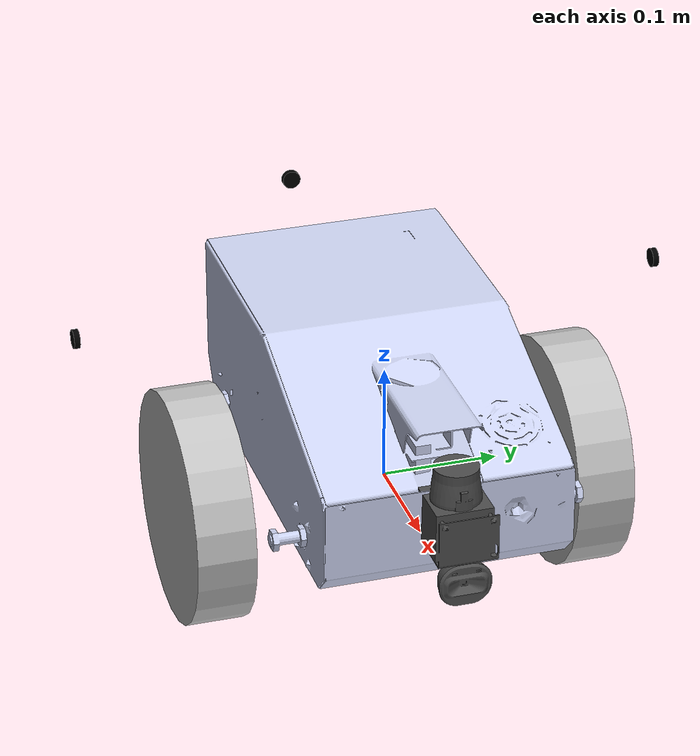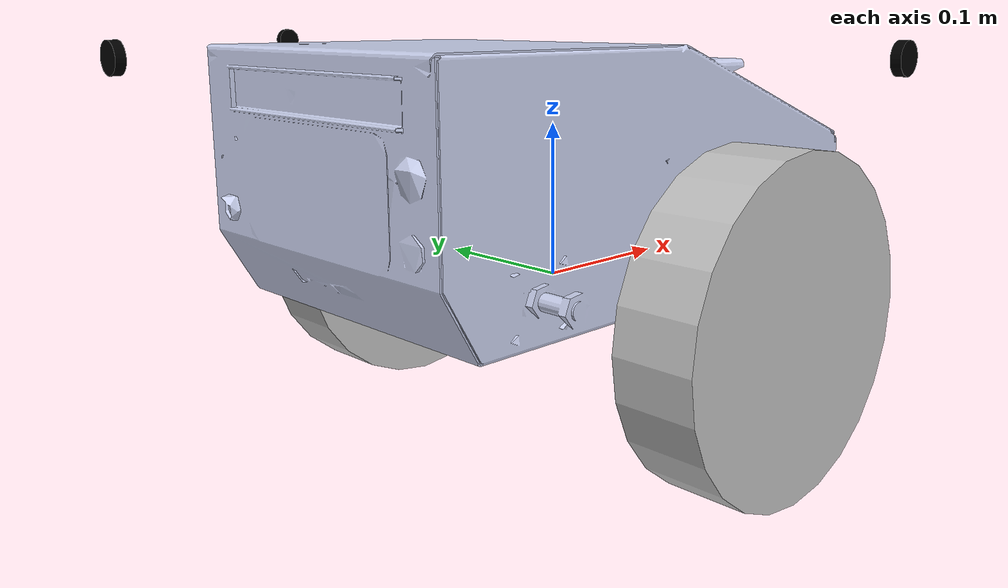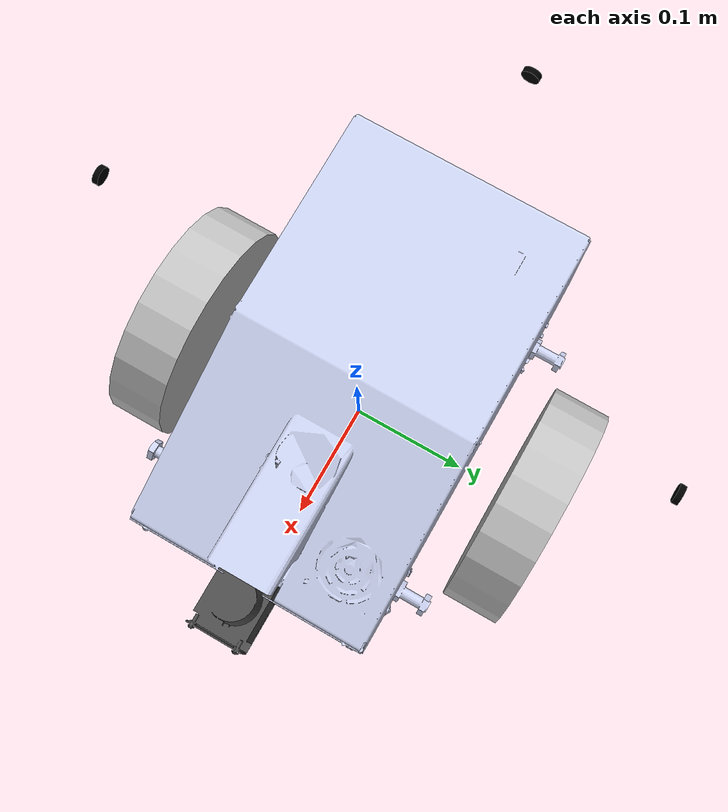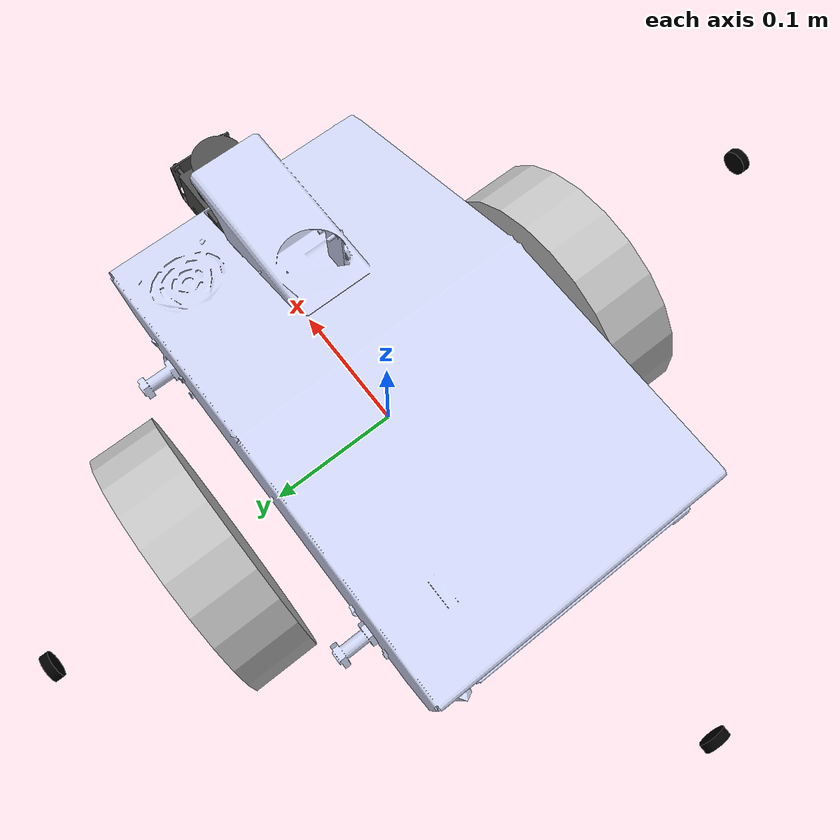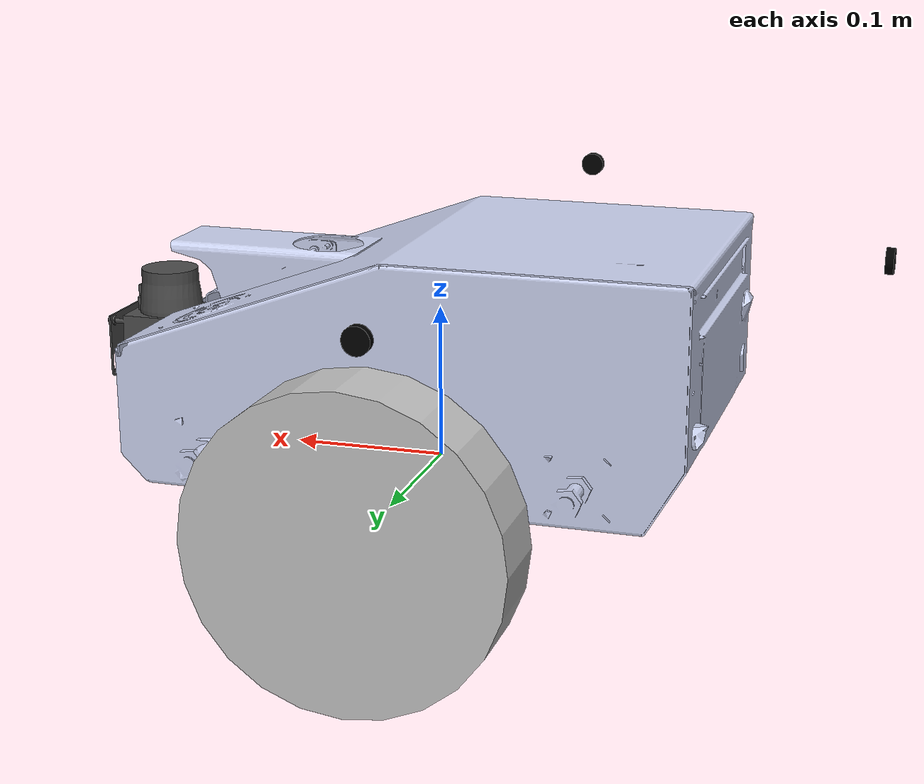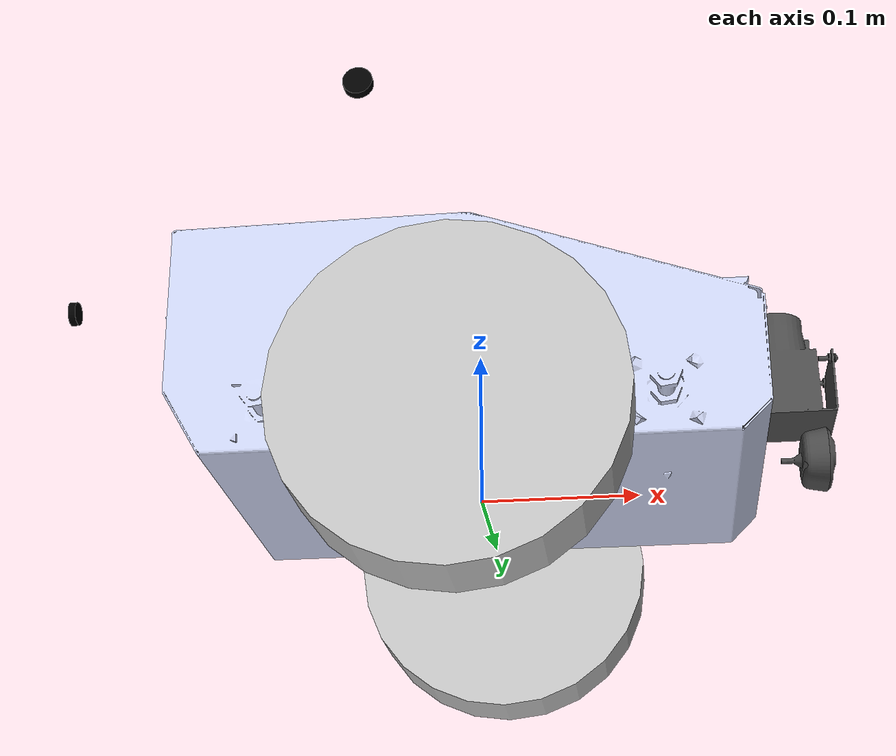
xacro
<?xml version="1.0"?>
<robot
  name="armadillo_base_urdf" description="Armadillo robot base">

  <link
    name="base_link">
    <inertial>
      <origin
        xyz="-0.058417 0.00010778 0.15422"
        rpy="0 0 0" />
      <mass
        value="100.6548" />
      <inertia
        ixx="0.61639"
        ixy="-9.1727E-05"
        ixz="-0.093044"
        iyy="0.57997"
        iyz="5.3231E-05"
        izz="0.36693" />
    </inertial>
   <visual name='chassis'>
      <origin
        xyz="0 0 0"
        rpy="0 0 0" />
      <geometry>
        <mesh
          filename="package://robotican_armadillo/description/meshes/base_link.STL" />
      </geometry>
      <material
        name="">
        <color
          rgba="0.79216 0.81961 0.93333 1" />
      </material>
    </visual>
      <collision name='caster_collision'>
      <origin
        xyz="-0.35 0 0"
        rpy="0 0 0" />
            <geometry>
              <sphere radius="0.1"/>
            </geometry>
            <surface>
              <friction>
                <ode>
                  <mu>0</mu>
                  <mu2>0</mu2>
                  <slip1>1.0</slip1>
                  <slip2>1.0</slip2>
                </ode>
              </friction>
            </surface>
          </collision>
  </link>

  <link name="base_footprint"/>

 <joint name="base_link_to_base_footprint" type="fixed">
    <parent link="base_link"/>
    <child link="base_footprint"/>
    <origin xyz="0.00 0.00 -0.1" rpy="0.0 0.0 0.0"/>
  </joint>

  <link
    name="front_cam_link">
    <inertial>
      <origin
        xyz="-0.0060072 3.3793E-07 0.0005545"
        rpy="0 0 0" />
      <mass
        value="0.01942" />
      <inertia
        ixx="3.9185E-06"
        ixy="-2.0999E-11"
        ixz="-4.949E-08"
        iyy="2.1089E-06"
        iyz="-3.146E-10"
        izz="2.8316E-06" />
    </inertial>
    <visual>
      <origin
        xyz="0 0 0"
        rpy="0 0 0" />
      <geometry>
        <mesh
          filename="package://robotican_armadillo/description/meshes/front_cam_link.STL" />
      </geometry>
      <material
        name="">
        <color
          rgba="0.29804 0.29804 0.29804 1" />
      </material>
    </visual>
    <collision>
      <origin
        xyz="0 0 0"
        rpy="0 0 0" />
      <geometry>
        <mesh
          filename="package://robotican_armadillo/description/meshes/front_cam_link.STL" />
      </geometry>
    </collision>
  </link>
  <joint
    name="front_cam_joint"
    type="fixed">
    <origin
      xyz="0.21658 0 0.0187"
      rpy="0 0 0" />
    <parent
      link="base_link" />
    <child
      link="front_cam_link" />
    <axis
      xyz="0 0 0" />
  </joint>
  <link
    name="left_urf_link">
    <inertial>
      <origin
        xyz="-0.0094226 -0.00019318 -1.6889E-05"
        rpy="0 0 0" />
      <mass
        value="0.0027749" />
      <inertia
        ixx="1.2831E-07"
        ixy="3.1103E-09"
        ixz="1.5459E-10"
        iyy="1.2843E-07"
        iyz="-4.3527E-09"
        izz="1.1894E-07" />
    </inertial>
    <visual>
      <origin
        xyz="0 0 0"
        rpy="0 ${M_PI/2} 0" />
      <geometry>
	<cylinder  length="0.005" radius="0.008"/>
      </geometry>
      <material
        name="">
        <color
          rgba="0 0 0 1" />
      </material>
    </visual>
    <collision>
      <origin
        xyz="0 0 0"
        rpy="0 ${M_PI/2} 0" />
      <geometry>
	<cylinder  length="0.01" radius="0.008"/>
      </geometry>
    </collision>
  </link>
  <joint
    name="left_urf_joint"
    type="fixed">
    <origin
      xyz="-0.038417 0.25288 0.1498"
      rpy="0 0 1.5708" />
    <parent
      link="base_link" />
    <child
      link="left_urf_link" />
    <axis
      xyz="0 0 0" />
  </joint>
  <link
    name="right_urf_link">
    <inertial>
      <origin
        xyz="-0.0094226 1.6889E-05 -0.00019318"
        rpy="0 0 0" />
      <mass
        value="0.0027749" />
      <inertia
        ixx="1.2831E-07"
        ixy="-1.5459E-10"
        ixz="3.1103E-09"
        iyy="1.1894E-07"
        iyz="4.3527E-09"
        izz="1.2843E-07" />
    </inertial>
    <visual>
      <origin
        xyz="0 0 0"
        rpy="0 ${M_PI/2} 0" />
      <geometry>
	<cylinder  length="0.005" radius="0.008"/>
      </geometry>
      <material
        name="">
        <color
          rgba="0 0 0 1" />
      </material>
    </visual>
    <collision>
      <origin
        xyz="0 0 0"
         rpy="0 ${M_PI/2} 0" />
      <geometry>
	<cylinder  length="0.005" radius="0.008"/>
      </geometry>
    </collision>
  </link>
  <joint
    name="right_urf_joint"
    type="fixed">
    <origin
      xyz="-0.038417 -0.25288 0.1498"
      rpy="0 0 -1.5708" />
    <parent
      link="base_link" />
    <child
      link="right_urf_link" />
    <axis
      xyz="0 0 0" />
  </joint>
  <link
    name="rear_urf_link">
    <inertial>
      <origin
        xyz="-0.0094226 -1.6889E-05 0.00019318"
        rpy="0 0 0" />
      <mass
        value="0.0027749" />
      <inertia
        ixx="1.2831E-07"
        ixy="1.5459E-10"
        ixz="-3.1103E-09"
        iyy="1.1894E-07"
        iyz="4.3527E-09"
        izz="1.2843E-07" />
    </inertial>
    <visual>
      <origin
        xyz="0 0 0"
        rpy="0 ${M_PI/2} 0" />
      <geometry>
	<cylinder  length="0.005" radius="0.008"/>
      </geometry>
      <material
        name="">
        <color
          rgba="0 0 0 1" />
      </material>
    </visual>
    <collision>
      <origin
        xyz="0 0 0"
        rpy="0 ${M_PI/2} 0" />
      <geometry>
	<cylinder  length="0.01" radius="0.008"/>
      </geometry>
    </collision>
  </link>
  <joint
    name="rear_urf_joint"
    type="fixed">
    <origin
      xyz="-0.28028 0 0.1498"
      rpy="0 0 3.1416" />
    <parent
      link="base_link" />
    <child
      link="rear_urf_link" />
    <axis
      xyz="0 0 0" />
  </joint>
  <link
    name="left_wheel_link">
    <inertial>
      <origin
        xyz="5.6549E-06 -0.050799 0.030167"
        rpy="0 0 0" />
      <mass
        value="1.8524" />
      <inertia
        ixx="0.0069046"
        ixy="-3.8717E-08"
        ixz="2.0707E-07"
        iyy="0.013153"
        iyz="-1.0124E-07"
        izz="0.0069054" />
    </inertial>
    <visual>
      <origin
        xyz="0 0 0"
         rpy="1.57079632679 0 0" />
      <geometry>
                 <cylinder  length="0.05" radius="0.1"/>
      </geometry>
      <material
        name="">
        <color
          rgba="0.75294 0.75294 0.75294 1" />
      </material>
    </visual>
    <collision>
      <origin
        xyz="0 0 0"
        rpy="${M_PI/2} 0 0" />
      <geometry>
                 <cylinder  length="0.05" radius="0.1"/>
      </geometry>
    </collision>
  </link>
  <joint
    name="left_wheel_joint"
    type="continuous">
    <origin
      xyz="0 0.1642 0"
      rpy="0 0 0" />
    <parent
      link="base_link" />
    <child
      link="left_wheel_link" />
    <axis
      xyz="0 1 0" />
  </joint>
  <link
    name="right_wheel_link">
    <inertial>
      <origin
        xyz="-5.6549E-06 0.050799 0.030167"
        rpy="0 0 0" />
      <mass
        value="1.8524" />
      <inertia
        ixx="0.0069046"
        ixy="-3.8717E-08"
        ixz="-2.0707E-07"
        iyy="0.013153"
        iyz="1.0124E-07"
        izz="0.0069054" />
    </inertial>
    <visual>
      <origin
        xyz="0 0 0"
         rpy="${M_PI/2} 0 0" />
      <geometry>
      <cylinder  length="0.05" radius="0.1"/>
      </geometry>
      <material
        name="">
        <color
          rgba="0.75294 0.75294 0.75294 1" />
      </material>
    </visual>
    <collision>
      <origin
        xyz="0 0 0"
        rpy="${M_PI/2} 0 0" />
      <geometry>
      <cylinder  length="0.05" radius="0.1"/>
      </geometry>
    </collision>
  </link>
  <joint
    name="right_wheel_joint"
    type="continuous">
    <origin
     xyz="0 -0.1642 0"
      rpy="0 0 0" />
    <parent
      link="base_link" />
    <child
      link="right_wheel_link" />
    <axis
      xyz="0 1 0" />
  </joint>
  <link
    name="laser_link">
    <inertial>
      <origin
        xyz="-5.6779E-05 6.3564E-05 -0.032003"
        rpy="0 0 0" />
      <mass
        value="0.13367" />
      <inertia
        ixx="7.0175E-05"
        ixy="-5.2416E-08"
        ixz="-1.6421E-07"
        iyy="7.0477E-05"
        iyz="-1.9232E-07"
        izz="4.6146E-05" />
    </inertial>
    <visual>
      <origin
        xyz="0 0 0"
        rpy="0 0 0" />
      <geometry>
        <mesh
          filename="package://robotican_armadillo/description/meshes/laser_link.STL" />
      </geometry>
      <material
        name="">
        <color
          rgba="0.29412 0.29412 0.29412 1" />
      </material>
    </visual>
    <collision>
      <origin
        xyz="0 0 0"
        rpy="0 0 0" />
      <geometry>
        <mesh
          filename="package://robotican_armadillo/description/meshes/laser_link.STL" />
      </geometry>
    </collision>
  </link>
  <joint
    name="laser_joint"
    type="fixed">
    <origin
      xyz="0.18961 0 0.1043"
      rpy="0 0 0" />
    <parent
      link="base_link" />
    <child
      link="laser_link" />
    <axis
      xyz="0 0 0" />
  </joint>

</robot>
